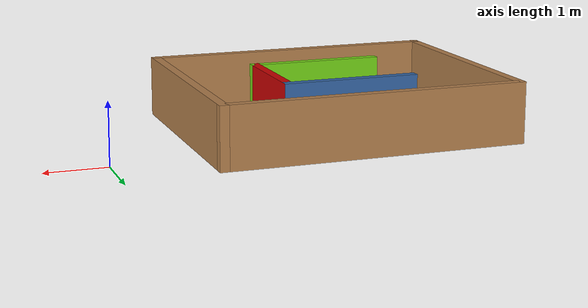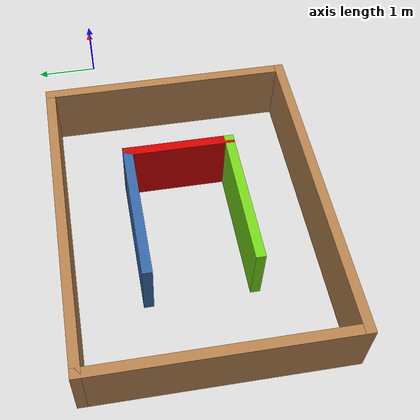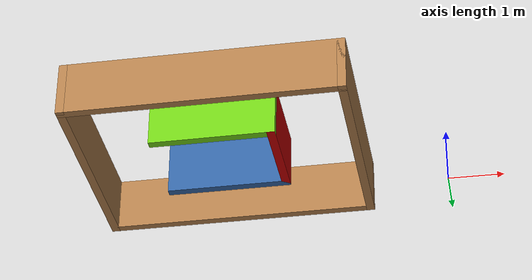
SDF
<?xml version='1.0'?>
<sdf version='1.7'>
  <model name='simple_world1'>
    <pose>-3.2175 -1.148 0 0 -0 0</pose>
    <link name='Wall_18'>
      <collision name='Wall_18_Collision'>
        <geometry>
          <box>
            <size>4 0.15 1</size>
          </box>
        </geometry>
        <pose>0 0 0.5 0 -0 0</pose>
      </collision>
      <visual name='Wall_18_Visual'>
        <pose>0 0 0.5 0 -0 0</pose>
        <geometry>
          <box>
            <size>4 0.15 1</size>
          </box>
        </geometry>
        <material>
          <script>
            <uri>file://media/materials/scripts/gazebo.material</uri>
            <name>Gazebo/Wood</name>
          </script>
          <ambient>1 1 1 1</ambient>
        </material>
        <meta>
          <layer>0</layer>
        </meta>
      </visual>
      <pose>-3.1425 0 0 0 -0 -1.5708</pose>
    </link>
    <link name='Wall_19'>
      <collision name='Wall_19_Collision'>
        <geometry>
          <box>
            <size>5 0.15 1</size>
          </box>
        </geometry>
        <pose>0 0 0.5 0 -0 0</pose>
      </collision>
      <visual name='Wall_19_Visual'>
        <pose>0 0 0.5 0 -0 0</pose>
        <geometry>
          <box>
            <size>5 0.15 1</size>
          </box>
        </geometry>
        <material>
          <script>
            <uri>file://media/materials/scripts/gazebo.material</uri>
            <name>Gazebo/Wood</name>
          </script>
          <ambient>1 1 1 1</ambient>
        </material>
        <meta>
          <layer>0</layer>
        </meta>
      </visual>
      <pose>-0.7175 -1.925 0 0 -0 0</pose>
    </link>
    <link name='Wall_20'>
      <collision name='Wall_20_Collision'>
        <geometry>
          <box>
            <size>4 0.15 1</size>
          </box>
        </geometry>
        <pose>0 0 0.5 0 -0 0</pose>
      </collision>
      <visual name='Wall_20_Visual'>
        <pose>0 0 0.5 0 -0 0</pose>
        <geometry>
          <box>
            <size>4 0.15 1</size>
          </box>
        </geometry>
        <material>
          <script>
            <uri>file://media/materials/scripts/gazebo.material</uri>
            <name>Gazebo/Wood</name>
          </script>
          <ambient>1 1 1 1</ambient>
        </material>
        <meta>
          <layer>0</layer>
        </meta>
      </visual>
      <pose>1.7075 0 0 0 -0 1.5708</pose>
    </link>
    <link name='Wall_21'>
      <collision name='Wall_21_Collision'>
        <geometry>
          <box>
            <size>5 0.15 1</size>
          </box>
        </geometry>
        <pose>0 0 0.5 0 -0 0</pose>
      </collision>
      <visual name='Wall_21_Visual'>
        <pose>0 0 0.5 0 -0 0</pose>
        <geometry>
          <box>
            <size>5 0.15 1</size>
          </box>
        </geometry>
        <material>
          <script>
            <uri>file://media/materials/scripts/gazebo.material</uri>
            <name>Gazebo/Wood</name>
          </script>
          <ambient>1 1 1 1</ambient>
        </material>
        <meta>
          <layer>0</layer>
        </meta>
      </visual>
      <pose>-0.7175 1.925 0 0 -0 3.14159</pose>
    </link>
    <link name='Wall_25'>
      <collision name='Wall_25_Collision'>
        <geometry>
          <box>
            <size>2.25 0.15 1</size>
          </box>
        </geometry>
        <pose>0 0 0.5 0 -0 0</pose>
      </collision>
      <visual name='Wall_25_Visual'>
        <pose>0 0 0.5 0 -0 0</pose>
        <geometry>
          <box>
            <size>2.25 0.15 1</size>
          </box>
        </geometry>
        <material>
          <script>
            <uri>file://media/materials/scripts/gazebo.material</uri>
            <name>Gazebo/Grey</name>
          </script>
          <ambient>0.203922 0.396078 0.643137 1</ambient>
        </material>
        <meta>
          <layer>0</layer>
        </meta>
      </visual>
      <pose>-0.7425 0.825 0 0 -0 0</pose>
    </link>
    <link name='Wall_26'>
      <collision name='Wall_26_Collision'>
        <geometry>
          <box>
            <size>1.75 0.15 1</size>
          </box>
        </geometry>
        <pose>0 0 0.5 0 -0 0</pose>
      </collision>
      <visual name='Wall_26_Visual'>
        <pose>0 0 0.5 0 -0 0</pose>
        <geometry>
          <box>
            <size>1.75 0.15 1</size>
          </box>
        </geometry>
        <material>
          <script>
            <uri>file://media/materials/scripts/gazebo.material</uri>
            <name>Gazebo/Grey</name>
          </script>
          <ambient>0.8 0 0 1</ambient>
        </material>
        <meta>
          <layer>0</layer>
        </meta>
      </visual>
      <pose>0.3075 0.025 0 0 -0 -1.5708</pose>
    </link>
    <link name='Wall_27'>
      <collision name='Wall_27_Collision'>
        <geometry>
          <box>
            <size>2.25 0.15 1</size>
          </box>
        </geometry>
        <pose>0 0 0.5 0 -0 0</pose>
      </collision>
      <visual name='Wall_27_Visual'>
        <pose>0 0 0.5 0 -0 0</pose>
        <geometry>
          <box>
            <size>2.25 0.15 1</size>
          </box>
        </geometry>
        <material>
          <script>
            <uri>file://media/materials/scripts/gazebo.material</uri>
            <name>Gazebo/Grey</name>
          </script>
          <ambient>0.45098 0.823529 0.0862745 1</ambient>
        </material>
        <meta>
          <layer>0</layer>
        </meta>
      </visual>
      <pose>-0.7425 -0.775 0 0 -0 3.14159</pose>
    </link>
    <static>1</static>
  </model>
</sdf>
